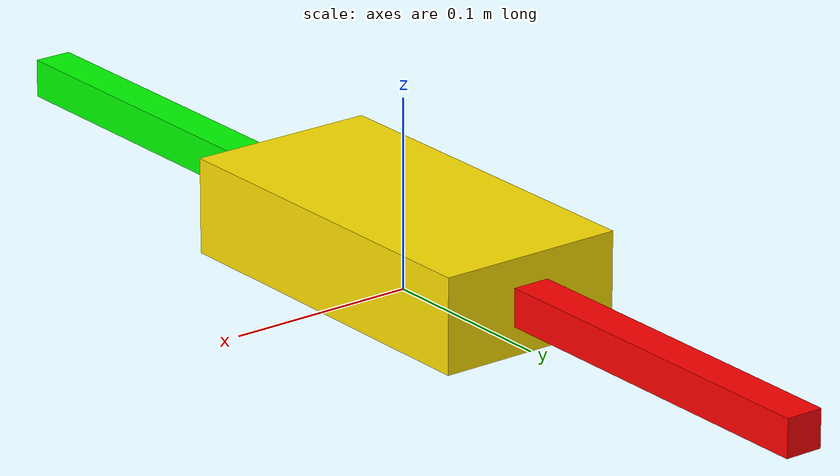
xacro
<?xml version="1.0"?>
<robot xmlns:xacro="http://ros.org/wiki/xacro"
  name="mimic_joint_gazebo_tutorial">

  <xacro:macro name="box_inertial" params="x y z mass *origin">
    <inertial>
      <mass value="${mass}" />
      <xacro:insert_block name="origin" />
      <inertia ixx="${0.0833333 * mass * (y*y + z*z)}" ixy="0.0" ixz="0.0"
        iyy="${0.0833333 * mass * (x*x + z*z)}" iyz="0.0"
        izz="${0.0833333 * mass * (x*x + y*y)}" />
    </inertial>
  </xacro:macro>

  <xacro:property name="material_yellow">
    <material name="yellow">
      <color rgba="${255/255} ${226/255} ${0/255} 1"/>
    </material>
  </xacro:property>
  <xacro:property name="material_green">
    <material name="green">
      <color rgba="0 1 0 1"/>
    </material>
  </xacro:property>
  <xacro:property name="material_red">
    <material name="red">
      <color rgba="1 0 0 1"/>
    </material>
  </xacro:property>

  <xacro:macro name="mimic_joint_plugin_gazebo" params="name_prefix parent_joint mimic_joint has_pid:=false multiplier:=1.0 offset:=0 sensitiveness:=0.0 max_effort:=1.0 robot_namespace:=''">
    <gazebo>
      <plugin name="${name_prefix}mimic_joint_plugin" filename="libroboticsgroup_gazebo_mimic_joint_plugin.so">
        <joint>${parent_joint}</joint>
        <mimicJoint>${mimic_joint}</mimicJoint>
        <xacro:if value="${has_pid}">                     <!-- if set to true, PID parameters from "/gazebo_ros_control/pid_gains/${mimic_joint}" are loaded -->
          <hasPID />
        </xacro:if>
        <multiplier>${multiplier}</multiplier>
        <offset>${offset}</offset>
        <sensitiveness>${sensitiveness}</sensitiveness>   <!-- if absolute difference between setpoint and process value is below this threshold, do nothing; 0.0 = disable [rad] -->
        <maxEffort>${max_effort}</maxEffort>              <!-- only taken into account if has_pid:=true [Nm] -->
        <xacro:unless value="${robot_namespace == ''}">
          <robotNamespace>${robot_namespace}</robotNamespace>
        </xacro:unless>
      </plugin>
    </gazebo>
  </xacro:macro>

  <xacro:macro name="controller_plugin_gazebo" params="robot_namespace:=''">
    <gazebo>
      <plugin name="gazebo_ros_control" filename="libgazebo_ros_control.so">
        <xacro:unless value="${robot_namespace == ''}">
          <robotNamespace>${robot_namespace}</robotNamespace>
        </xacro:unless>
        <controlPeriod>0.001</controlPeriod>
      </plugin>
    </gazebo>
  </xacro:macro>

  <xacro:controller_plugin_gazebo />

  <!-- base_footprint + base_link -->

  <link name="base_footprint" />

  <joint name="base_joint" type="fixed">
    <origin xyz="0.0 0.0 0.025" />
    <parent link="base_footprint" />
    <child link="base_link" />
  </joint>

  <link name="base_link">
    <visual>
      <origin xyz="0 0 0" />
      <geometry>
        <box size="0.10 0.20 0.05" />
      </geometry>
      <xacro:insert_block name="material_yellow" />
    </visual>
    <collision>
      <origin xyz="0 0 0" />
      <geometry>
        <box size="0.10 0.20 0.05" />
      </geometry>
    </collision>
    <xacro:box_inertial mass="1.0" x="0.10" y="0.20" z="0.05">
      <origin xyz="0 0 0" />
    </xacro:box_inertial>
  </link>
  <gazebo reference="base_link">
    <material>Gazebo/Yellow</material>
  </gazebo>

  <!-- right finger -->

  <joint name="right_finger_joint" type="revolute">
    <origin xyz="0.0 -0.10 0.0" rpy="0 0 ${pi}" />
    <parent link="base_link" />
    <child link="right_finger" />
    <axis xyz="1 0 0" />
    <limit lower="0" upper="${pi / 2}" velocity="0.7" effort="1000" />
    <dynamics damping="0.02" friction="0.0" />
  </joint>

  <link name="right_finger">
    <visual>
      <origin xyz="0 0.10 0" />
      <geometry>
        <box size="0.02 0.20 0.02" />
      </geometry>
      <xacro:insert_block name="material_green" />
    </visual>
    <collision>
      <origin xyz="0 0.10 0" />
      <geometry>
        <box size="0.02 0.20 0.02" />
      </geometry>
    </collision>
    <xacro:box_inertial mass="0.1" x="0.02" y="0.20" z="0.02">
      <origin xyz="0 0.10 0" />
    </xacro:box_inertial>
  </link>
  <gazebo reference="right_finger">
    <material>Gazebo/Green</material>
  </gazebo>

  <transmission name="right_finger_joint_trans">
    <type>transmission_interface/SimpleTransmission</type>
    <joint name="right_finger_joint">
      <hardwareInterface>hardware_interface/PositionJointInterface</hardwareInterface>
    </joint>
    <actuator name="right_finger_joint_motor">
      <mechanicalReduction>1</mechanicalReduction>
    </actuator>
  </transmission>

  <!-- left finger -->

  <joint name="left_finger_joint" type="revolute">
    <origin xyz="0.0 0.10 0.0" />
    <parent link="base_link" />
    <child link="left_finger" />
    <axis xyz="1 0 0" />
    <limit lower="0" upper="${pi / 2}" velocity="0.7" effort="1000" />
    <mimic joint="right_finger_joint" multiplier="1" offset="0" />
    <dynamics damping="0.02" friction="0.0" />
  </joint>

  <xacro:mimic_joint_plugin_gazebo name_prefix="left_finger_joint"
    parent_joint="right_finger_joint" mimic_joint="left_finger_joint"
    has_pid="true" multiplier="1.0" max_effort="10.0" />

  <link name="left_finger">
    <visual>
      <origin xyz="0 0.10 0" />
      <geometry>
        <box size="0.02 0.20 0.02" />
      </geometry>
      <xacro:insert_block name="material_red" />
    </visual>
    <collision>
      <origin xyz="0 0.10 0" />
      <geometry>
        <box size="0.02 0.20 0.02" />
      </geometry>
    </collision>
    <xacro:box_inertial mass="0.1" x="0.02" y="0.20" z="0.02">
      <origin xyz="0 0.10 0" />
    </xacro:box_inertial>
  </link>
  <gazebo reference="left_finger">
    <material>Gazebo/Red</material>
  </gazebo>

</robot>
